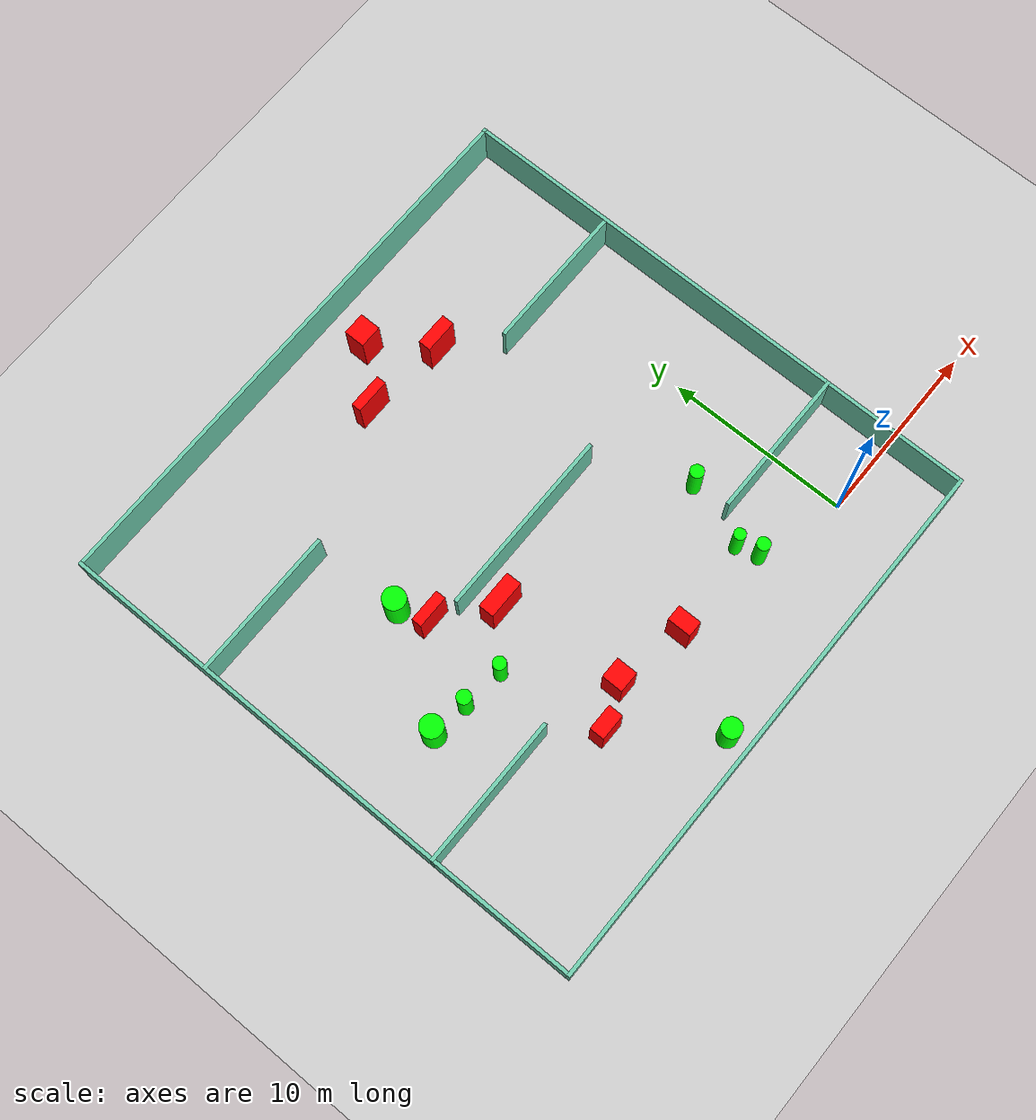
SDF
<sdf version="1.7">
 <world name="default">
  <light name="sun" type="directional">
   <pose>0 0 10 0 -0 0</pose>
   <diffuse>0.8 0.8 0.8 1</diffuse>
   <specular>0.2 0.2 0.2 1</specular>
   <attenuation>
    <range>1000</range>
    <constant>0.9</constant>
    <linear>0.01</linear>
    <quadratic>0.001</quadratic>
   </attenuation>
   <direction>-0.5 0.1 -0.9</direction>
   <spot><inner_angle>0</inner_angle><outer_angle>0</outer_angle><falloff>0</falloff></spot>
  </light>
  <model name="ground_plane">
   <static>1</static>
   <link name="link">
    <collision name="collision">
     <geometry><plane><normal>0 0 1</normal><size>100 100</size></plane></geometry>
     <surface>
      <contact><collide_bitmask>65535</collide_bitmask></contact>
      <friction><ode><mu>100</mu><mu2>50</mu2></ode></friction>
     </surface>
    </collision>
    <visual name="visual">
     <cast_shadows>0</cast_shadows>
     <geometry><plane><normal>0 0 1</normal><size>100 100</size></plane></geometry>
     <material>
      <script><uri>file://media/materials/scripts/gazebo.material</uri><name>Gazebo/Grey</name></script>
     </material>
    </visual>
   </link>
  </model>
  <gravity>0 0 -9.8</gravity>
  <magnetic_field>6e-06 2.3e-05 -4.2e-05</magnetic_field>
  <atmosphere type="adiabatic"/>
  <physics type="ode">
   <max_step_size>0.001</max_step_size>
   <real_time_factor>1</real_time_factor>
   <real_time_update_rate>1000</real_time_update_rate>
  </physics>
  <scene><ambient>0.4 0.4 0.4 1</ambient><background>0.7 0.7 0.7 1</background><shadows>1</shadows></scene>
  <spherical_coordinates>
   <surface_model>EARTH_WGS84</surface_model>
   <latitude_deg>0</latitude_deg>
   <longitude_deg>0</longitude_deg>
   <elevation>0</elevation>
   <heading_deg>0</heading_deg>
  </spherical_coordinates>
  <model name="my_base_walls">
   <link name="Wall_10">
    <collision name="Wall_10_Collision">
     <geometry><box><size>8.2 0.2 2.5</size></box></geometry>
     <pose>0 0 1.25 0 -0 0</pose>
    </collision>
    <visual name="Wall_10_Visual">
     <pose>0 0 1.25 0 -0 0</pose>
     <geometry><box><size>8.2 0.2 2.5</size></box></geometry>
     <material>
      <script><uri>file://media/materials/scripts/gazebo.material</uri><name>Gazebo/Grey</name></script>
      <ambient>0.435294 0.796078 0.67451 1</ambient>
     </material>
     <meta><layer>0</layer></meta>
    </visual>
    <pose>-11 -7 0 0 -0 0</pose>
   </link>
   <link name="Wall_12">
    <collision name="Wall_12_Collision">
     <geometry><box><size>8.2 0.2 2.5</size></box></geometry>
     <pose>0 0 1.25 0 -0 0</pose>
    </collision>
    <visual name="Wall_12_Visual">
     <pose>0 0 1.25 0 -0 0</pose>
     <geometry><box><size>8.2 0.2 2.5</size></box></geometry>
     <material>
      <script><uri>file://media/materials/scripts/gazebo.material</uri><name>Gazebo/Grey</name></script>
      <ambient>0.435294 0.796078 0.67451 1</ambient>
     </material>
     <meta><layer>0</layer></meta>
    </visual>
    <pose>-11 7 0 0 -0 0</pose>
   </link>
   <link name="Wall_14">
    <collision name="Wall_14_Collision">
     <geometry><box><size>8.2 0.2 2.5</size></box></geometry>
     <pose>0 0 1.25 0 -0 0</pose>
    </collision>
    <visual name="Wall_14_Visual">
     <pose>0 0 1.25 0 -0 0</pose>
     <geometry><box><size>8.2 0.2 2.5</size></box></geometry>
     <material>
      <script><uri>file://media/materials/scripts/gazebo.material</uri><name>Gazebo/Grey</name></script>
      <ambient>0.435294 0.796078 0.67451 1</ambient>
     </material>
     <meta><layer>0</layer></meta>
    </visual>
    <pose>11 7 0 0 -0 3.14159</pose>
   </link>
   <link name="Wall_16">
    <collision name="Wall_16_Collision">
     <geometry><box><size>10.2 0.2 2.5</size></box></geometry>
     <pose>0 0 1.25 0 -0 0</pose>
    </collision>
    <visual name="Wall_16_Visual">
     <pose>0 0 1.25 0 -0 0</pose>
     <geometry><box><size>10.2 0.2 2.5</size></box></geometry>
     <material>
      <script><uri>file://media/materials/scripts/gazebo.material</uri><name>Gazebo/Grey</name></script>
      <ambient>0.435294 0.796078 0.67451 1</ambient>
     </material>
     <meta><layer>0</layer></meta>
    </visual>
    <pose>0 0 0 0 -0 3.14159</pose>
   </link>
   <link name="Wall_2">
    <collision name="Wall_2_Collision">
     <geometry><box><size>30.2 0.2 2.5</size></box></geometry>
     <pose>0 0 1.25 0 -0 0</pose>
    </collision>
    <visual name="Wall_2_Visual">
     <pose>0 0 1.25 0 -0 0</pose>
     <geometry><box><size>30.2 0.2 2.5</size></box></geometry>
     <material>
      <script><uri>file://media/materials/scripts/gazebo.material</uri><name>Gazebo/Grey</name></script>
      <ambient>0.435294 0.796078 0.67451 1</ambient>
     </material>
     <meta><layer>0</layer></meta>
    </visual>
    <pose>0 -15 0 0 -0 3.14159</pose>
   </link>
   <link name="Wall_3">
    <collision name="Wall_3_Collision">
     <geometry><box><size>30.2 0.2 2.5</size></box></geometry>
     <pose>0 0 1.25 0 -0 0</pose>
    </collision>
    <visual name="Wall_3_Visual">
     <pose>0 0 1.25 0 -0 0</pose>
     <geometry><box><size>30.2 0.2 2.5</size></box></geometry>
     <material>
      <script><uri>file://media/materials/scripts/gazebo.material</uri><name>Gazebo/Grey</name></script>
      <ambient>0.435294 0.796078 0.67451 1</ambient>
     </material>
     <meta><layer>0</layer></meta>
    </visual>
    <pose>-15 0 0 0 -0 1.5708</pose>
   </link>
   <link name="Wall_4">
    <collision name="Wall_4_Collision">
     <geometry><box><size>30.2 0.2 2.5</size></box></geometry>
     <pose>0 0 1.25 0 -0 0</pose>
    </collision>
    <visual name="Wall_4_Visual">
     <pose>0 0 1.25 0 -0 0</pose>
     <geometry><box><size>30.2 0.2 2.5</size></box></geometry>
     <material>
      <script><uri>file://media/materials/scripts/gazebo.material</uri><name>Gazebo/Grey</name></script>
      <ambient>0.435294 0.796078 0.67451 1</ambient>
     </material>
     <meta><layer>0</layer></meta>
    </visual>
    <pose>0 15 0 0 -0 0</pose>
   </link>
   <link name="Wall_6">
    <collision name="Wall_6_Collision">
     <geometry><box><size>30.2 0.2 2.5</size></box></geometry>
     <pose>0 0 1.25 0 -0 0</pose>
    </collision>
    <visual name="Wall_6_Visual">
     <pose>0 0 1.25 0 -0 0</pose>
     <geometry><box><size>30.2 0.2 2.5</size></box></geometry>
     <material>
      <script><uri>file://media/materials/scripts/gazebo.material</uri><name>Gazebo/Grey</name></script>
      <ambient>0.435294 0.796078 0.67451 1</ambient>
     </material>
     <meta><layer>0</layer></meta>
    </visual>
    <pose>15 0 0 0 -0 1.5708</pose>
   </link>
   <link name="Wall_8">
    <collision name="Wall_8_Collision">
     <geometry><box><size>8.2 0.2 2.5</size></box></geometry>
     <pose>0 0 1.25 0 -0 0</pose>
    </collision>
    <visual name="Wall_8_Visual">
     <pose>0 0 1.25 0 -0 0</pose>
     <geometry><box><size>8.2 0.2 2.5</size></box></geometry>
     <material>
      <script><uri>file://media/materials/scripts/gazebo.material</uri><name>Gazebo/Grey</name></script>
      <ambient>0.435294 0.796078 0.67451 1</ambient>
     </material>
     <meta><layer>0</layer></meta>
    </visual>
    <pose>11 -7 0 0 -0 3.14159</pose>
   </link>
   <static>1</static>
   <pose>-11 11 0 0 -0 0</pose>
  </model>
  <model name="cylinder1">
   <static>1</static>
   <link name="link">
    <inertial>
     <mass>1</mass>
     <inertia><ixx>0.5</ixx><ixy>0</ixy><ixz>0</ixz><iyy>0.5</iyy><iyz>0</iyz><izz>1</izz></inertia>
    </inertial>
    <collision name="collision">
     <geometry><cylinder><radius>0.3590982949763352</radius><length>2.5</length></cylinder></geometry>
    </collision>
    <visual name="visual">
     <geometry><cylinder><radius>0.3590982949763352</radius><length>2.5</length></cylinder></geometry>
     <material>
      <ambient>0 1 0 1</ambient>
      <diffuse>0 1 0 1</diffuse>
      <specular>0.1 0.1 0.1 1</specular>
      <emissive>0 0 0 0</emissive>
     </material>
    </visual>
   </link>
   <pose>-4.571498727036776 1.4425895216119295 1.25 0 0 0</pose>
  </model>
  <model name="cylinder2">
   <static>1</static>
   <link name="link">
    <inertial>
     <mass>1</mass>
     <inertia><ixx>0.5</ixx><ixy>0</ixy><ixz>0</ixz><iyy>0.5</iyy><iyz>0</iyz><izz>1</izz></inertia>
    </inertial>
    <collision name="collision">
     <geometry><cylinder><radius>0.3858282212937304</radius><length>2.5</length></cylinder></geometry>
    </collision>
    <visual name="visual">
     <geometry><cylinder><radius>0.3858282212937304</radius><length>2.5</length></cylinder></geometry>
     <material>
      <ambient>0 1 0 1</ambient>
      <diffuse>0 1 0 1</diffuse>
      <specular>0.1 0.1 0.1 1</specular>
      <emissive>0 0 0 0</emissive>
     </material>
    </visual>
   </link>
   <pose>-19.365101778049077 7.72810382080379 1.25 0 0 0</pose>
  </model>
  <model name="cylinder3">
   <static>1</static>
   <link name="link">
    <inertial>
     <mass>1</mass>
     <inertia><ixx>0.5</ixx><ixy>0</ixy><ixz>0</ixz><iyy>0.5</iyy><iyz>0</iyz><izz>1</izz></inertia>
    </inertial>
    <collision name="collision">
     <geometry><cylinder><radius>0.3195294464215786</radius><length>2.5</length></cylinder></geometry>
    </collision>
    <visual name="visual">
     <geometry><cylinder><radius>0.3195294464215786</radius><length>2.5</length></cylinder></geometry>
     <material>
      <ambient>0 1 0 1</ambient>
      <diffuse>0 1 0 1</diffuse>
      <specular>0.1 0.1 0.1 1</specular>
      <emissive>0 0 0 0</emissive>
     </material>
    </visual>
   </link>
   <pose>-4.907148426080509 2.6152579440701977 1.25 0 0 0</pose>
  </model>
  <model name="cylinder4">
   <static>1</static>
   <link name="link">
    <inertial>
     <mass>1</mass>
     <inertia><ixx>0.5</ixx><ixy>0</ixy><ixz>0</ixz><iyy>0.5</iyy><iyz>0</iyz><izz>1</izz></inertia>
    </inertial>
    <collision name="collision">
     <geometry><cylinder><radius>0.6088835857626388</radius><length>2.5</length></cylinder></geometry>
    </collision>
    <visual name="visual">
     <geometry><cylinder><radius>0.6088835857626388</radius><length>2.5</length></cylinder></geometry>
     <material>
      <ambient>0 1 0 1</ambient>
      <diffuse>0 1 0 1</diffuse>
      <specular>0.1 0.1 0.1 1</specular>
      <emissive>0 0 0 0</emissive>
     </material>
    </visual>
   </link>
   <pose>-21.376152733479785 8.006360224143886 1.25 0 0 0</pose>
  </model>
  <model name="cylinder5">
   <static>1</static>
   <link name="link">
    <inertial>
     <mass>1</mass>
     <inertia><ixx>0.5</ixx><ixy>0</ixy><ixz>0</ixz><iyy>0.5</iyy><iyz>0</iyz><izz>1</izz></inertia>
    </inertial>
    <collision name="collision">
     <geometry><cylinder><radius>0.5385701924207232</radius><length>2.5</length></cylinder></geometry>
    </collision>
    <visual name="visual">
     <geometry><cylinder><radius>0.5385701924207232</radius><length>2.5</length></cylinder></geometry>
     <material>
      <ambient>0 1 0 1</ambient>
      <diffuse>0 1 0 1</diffuse>
      <specular>0.1 0.1 0.1 1</specular>
      <emissive>0 0 0 0</emissive>
     </material>
    </visual>
   </link>
   <pose>-12.597159288595645 -2.81308185080405 1.25 0 0 0</pose>
  </model>
  <model name="cylinder6">
   <static>1</static>
   <link name="link">
    <inertial>
     <mass>1</mass>
     <inertia><ixx>0.5</ixx><ixy>0</ixy><ixz>0</ixz><iyy>0.5</iyy><iyz>0</iyz><izz>1</izz></inertia>
    </inertial>
    <collision name="collision">
     <geometry><cylinder><radius>0.3678940528677256</radius><length>2.5</length></cylinder></geometry>
    </collision>
    <visual name="visual">
     <geometry><cylinder><radius>0.3678940528677256</radius><length>2.5</length></cylinder></geometry>
     <material>
      <ambient>0 1 0 1</ambient>
      <diffuse>0 1 0 1</diffuse>
      <specular>0.1 0.1 0.1 1</specular>
      <emissive>0 0 0 0</emissive>
     </material>
    </visual>
   </link>
   <pose>-3.708254734977519 6.155417127701684 1.25 0 0 0</pose>
  </model>
  <model name="cylinder7">
   <static>1</static>
   <link name="link">
    <inertial>
     <mass>1</mass>
     <inertia><ixx>0.5</ixx><ixy>0</ixy><ixz>0</ixz><iyy>0.5</iyy><iyz>0</iyz><izz>1</izz></inertia>
    </inertial>
    <collision name="collision">
     <geometry><cylinder><radius>0.6168869075241565</radius><length>2.5</length></cylinder></geometry>
    </collision>
    <visual name="visual">
     <geometry><cylinder><radius>0.6168869075241565</radius><length>2.5</length></cylinder></geometry>
     <material>
      <ambient>0 1 0 1</ambient>
      <diffuse>0 1 0 1</diffuse>
      <specular>0.1 0.1 0.1 1</specular>
      <emissive>0 0 0 0</emissive>
     </material>
    </visual>
   </link>
   <pose>-17.83829594943358 13.346438083771634 1.25 0 0 0</pose>
  </model>
  <model name="cylinder8">
   <static>1</static>
   <link name="link">
    <inertial>
     <mass>1</mass>
     <inertia><ixx>0.5</ixx><ixy>0</ixy><ixz>0</ixz><iyy>0.5</iyy><iyz>0</iyz><izz>1</izz></inertia>
    </inertial>
    <collision name="collision">
     <geometry><cylinder><radius>0.35205348015979504</radius><length>2.5</length></cylinder></geometry>
    </collision>
    <visual name="visual">
     <geometry><cylinder><radius>0.35205348015979504</radius><length>2.5</length></cylinder></geometry>
     <material>
      <ambient>0 1 0 1</ambient>
      <diffuse>0 1 0 1</diffuse>
      <specular>0.1 0.1 0.1 1</specular>
      <emissive>0 0 0 0</emissive>
     </material>
    </visual>
   </link>
   <pose>-17.070743325915466 7.479248153221818 1.25 0 0 0</pose>
  </model>
  <model name="box1">
   <static>1</static>
   <link name="link">
    <inertial>
     <mass>1</mass>
     <inertia><ixx>0.083</ixx><ixy>0</ixy><ixz>0</ixz><iyy>0.083</iyy><iyz>0</iyz><izz>0.083</izz></inertia>
    </inertial>
    <collision name="collision">
     <geometry><box><size>1.9027613365615104 0.5316411888999479 2.5</size></box></geometry>
    </collision>
    <visual name="visual">
     <geometry><box><size>1.9027613365615104 0.5316411888999479 2.5</size></box></geometry>
     <material>
      <ambient>1 0 0 1</ambient>
      <diffuse>1 0 0 1</diffuse>
      <specular>0.1 0.1 0.1 1</specular>
      <emissive>0 0 0 0</emissive>
     </material>
    </visual>
    <sensor name="my_contact" type="contact">
     <contact><collision>box_collision</collision><topic>__default_topic__</topic></contact>
    </sensor>
   </link>
   <pose>-10.757940680067668 21.090669806694915 1.25 0 0 0</pose>
  </model>
  <model name="box2">
   <static>1</static>
   <link name="link">
    <inertial>
     <mass>1</mass>
     <inertia><ixx>0.083</ixx><ixy>0</ixy><ixz>0</ixz><iyy>0.083</iyy><iyz>0</iyz><izz>0.083</izz></inertia>
    </inertial>
    <collision name="collision">
     <geometry><box><size>1.4371295482865243 0.8098637264595081 2.5</size></box></geometry>
    </collision>
    <visual name="visual">
     <geometry><box><size>1.4371295482865243 0.8098637264595081 2.5</size></box></geometry>
     <material>
      <ambient>1 0 0 1</ambient>
      <diffuse>1 0 0 1</diffuse>
      <specular>0.1 0.1 0.1 1</specular>
      <emissive>0 0 0 0</emissive>
     </material>
    </visual>
    <sensor name="my_contact" type="contact">
     <contact><collision>box_collision</collision><topic>__default_topic__</topic></contact>
    </sensor>
   </link>
   <pose>-16.08164565851896 1.8541478537808338 1.25 0 0 0</pose>
  </model>
  <model name="box3">
   <static>1</static>
   <link name="link">
    <inertial>
     <mass>1</mass>
     <inertia><ixx>0.083</ixx><ixy>0</ixy><ixz>0</ixz><iyy>0.083</iyy><iyz>0</iyz><izz>0.083</izz></inertia>
    </inertial>
    <collision name="collision">
     <geometry><box><size>2.0887871333525467 0.8468239380553819 2.5</size></box></geometry>
    </collision>
    <visual name="visual">
     <geometry><box><size>2.0887871333525467 0.8468239380553819 2.5</size></box></geometry>
     <material>
      <ambient>1 0 0 1</ambient>
      <diffuse>1 0 0 1</diffuse>
      <specular>0.1 0.1 0.1 1</specular>
      <emissive>0 0 0 0</emissive>
     </material>
    </visual>
    <sensor name="my_contact" type="contact">
     <contact><collision>box_collision</collision><topic>__default_topic__</topic></contact>
    </sensor>
   </link>
   <pose>-14.510072776848826 9.581480978404308 1.25 0 0 0</pose>
  </model>
  <model name="box4">
   <static>1</static>
   <link name="link">
    <inertial>
     <mass>1</mass>
     <inertia><ixx>0.083</ixx><ixy>0</ixy><ixz>0</ixz><iyy>0.083</iyy><iyz>0</iyz><izz>0.083</izz></inertia>
    </inertial>
    <collision name="collision">
     <geometry><box><size>1.8006185753181603 0.563529955745309 2.5</size></box></geometry>
    </collision>
    <visual name="visual">
     <geometry><box><size>1.8006185753181603 0.563529955745309 2.5</size></box></geometry>
     <material>
      <ambient>1 0 0 1</ambient>
      <diffuse>1 0 0 1</diffuse>
      <specular>0.1 0.1 0.1 1</specular>
      <emissive>0 0 0 0</emissive>
     </material>
    </visual>
    <sensor name="my_contact" type="contact">
     <contact><collision>box_collision</collision><topic>__default_topic__</topic></contact>
    </sensor>
   </link>
   <pose>-17.181393525756334 11.753497108003682 1.25 0 0 0</pose>
  </model>
  <model name="box5">
   <static>1</static>
   <link name="link">
    <inertial>
     <mass>1</mass>
     <inertia><ixx>0.083</ixx><ixy>0</ixy><ixz>0</ixz><iyy>0.083</iyy><iyz>0</iyz><izz>0.083</izz></inertia>
    </inertial>
    <collision name="collision">
     <geometry><box><size>1.1516316313888342 1.1569591659885685 2.5</size></box></geometry>
    </collision>
    <visual name="visual">
     <geometry><box><size>1.1516316313888342 1.1569591659885685 2.5</size></box></geometry>
     <material>
      <ambient>1 0 0 1</ambient>
      <diffuse>1 0 0 1</diffuse>
      <specular>0.1 0.1 0.1 1</specular>
      <emissive>0 0 0 0</emissive>
     </material>
    </visual>
    <sensor name="my_contact" type="contact">
     <contact><collision>box_collision</collision><topic>__default_topic__</topic></contact>
    </sensor>
   </link>
   <pose>-13.940275424280122 2.778820630440789 1.25 0 0 0</pose>
  </model>
  <model name="box6">
   <static>1</static>
   <link name="link">
    <inertial>
     <mass>1</mass>
     <inertia><ixx>0.083</ixx><ixy>0</ixy><ixz>0</ixz><iyy>0.083</iyy><iyz>0</iyz><izz>0.083</izz></inertia>
    </inertial>
    <collision name="collision">
     <geometry><box><size>0.8624134265387916 1.3016882322151633 2.5</size></box></geometry>
    </collision>
    <visual name="visual">
     <geometry><box><size>0.8624134265387916 1.3016882322151633 2.5</size></box></geometry>
     <material>
      <ambient>1 0 0 1</ambient>
      <diffuse>1 0 0 1</diffuse>
      <specular>0.1 0.1 0.1 1</specular>
      <emissive>0 0 0 0</emissive>
     </material>
    </visual>
    <sensor name="my_contact" type="contact">
     <contact><collision>box_collision</collision><topic>__default_topic__</topic></contact>
    </sensor>
   </link>
   <pose>-9.970680456736659 2.0344910485627876 1.25 0 0 0</pose>
  </model>
  <model name="box7">
   <static>1</static>
   <link name="link">
    <inertial>
     <mass>1</mass>
     <inertia><ixx>0.083</ixx><ixy>0</ixy><ixz>0</ixz><iyy>0.083</iyy><iyz>0</iyz><izz>0.083</izz></inertia>
    </inertial>
    <collision name="collision">
     <geometry><box><size>1.2387608310642921 1.1475070926843725 2.5</size></box></geometry>
    </collision>
    <visual name="visual">
     <geometry><box><size>1.2387608310642921 1.1475070926843725 2.5</size></box></geometry>
     <material>
      <ambient>1 0 0 1</ambient>
      <diffuse>1 0 0 1</diffuse>
      <specular>0.1 0.1 0.1 1</specular>
      <emissive>0 0 0 0</emissive>
     </material>
    </visual>
    <sensor name="my_contact" type="contact">
     <contact><collision>box_collision</collision><topic>__default_topic__</topic></contact>
    </sensor>
   </link>
   <pose>-8.414232770126427 23.56068711656018 1.25 0 0 0</pose>
  </model>
  <model name="box8">
   <static>1</static>
   <link name="link">
    <inertial>
     <mass>1</mass>
     <inertia><ixx>0.083</ixx><ixy>0</ixy><ixz>0</ixz><iyy>0.083</iyy><iyz>0</iyz><izz>0.083</izz></inertia>
    </inertial>
    <collision name="collision">
     <geometry><box><size>1.8226351371563008 0.6856372332314107 2.5</size></box></geometry>
    </collision>
    <visual name="visual">
     <geometry><box><size>1.8226351371563008 0.6856372332314107 2.5</size></box></geometry>
     <material>
      <ambient>1 0 0 1</ambient>
      <diffuse>1 0 0 1</diffuse>
      <specular>0.1 0.1 0.1 1</specular>
      <emissive>0 0 0 0</emissive>
     </material>
    </visual>
    <sensor name="my_contact" type="contact">
     <contact><collision>box_collision</collision><topic>__default_topic__</topic></contact>
    </sensor>
   </link>
   <pose>-6.18500606473456 20.635078273615594 1.25 0 0 0</pose>
  </model>
 </world>
</sdf>
